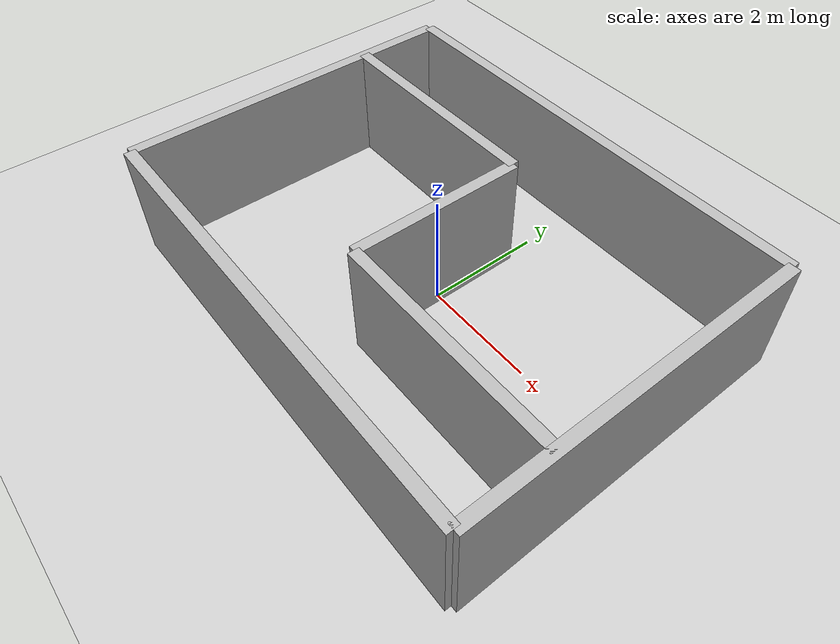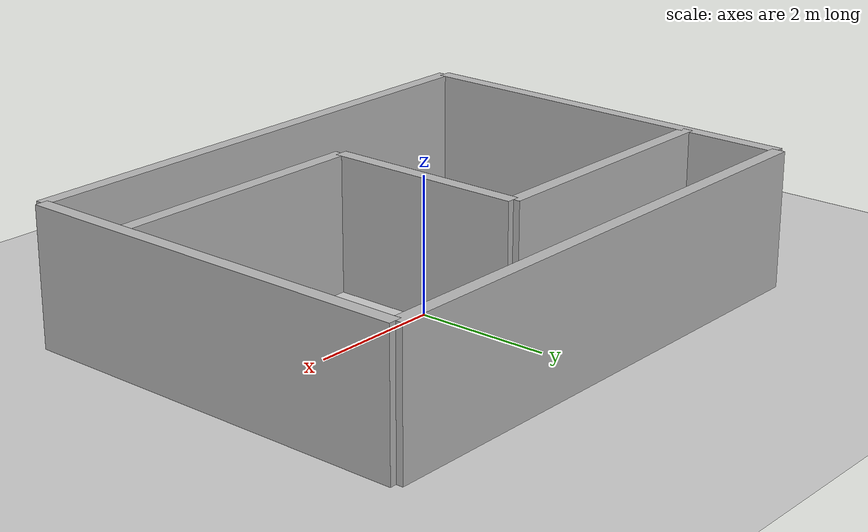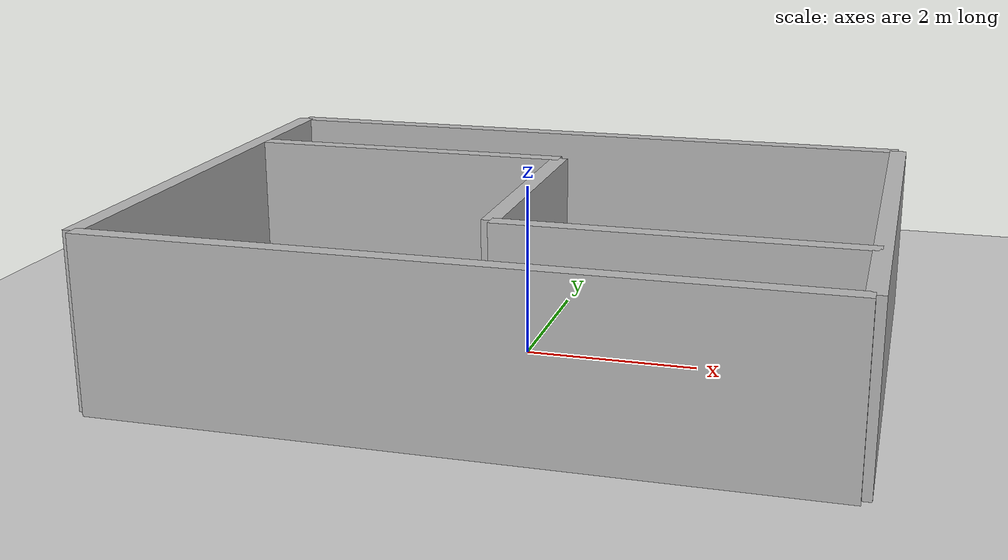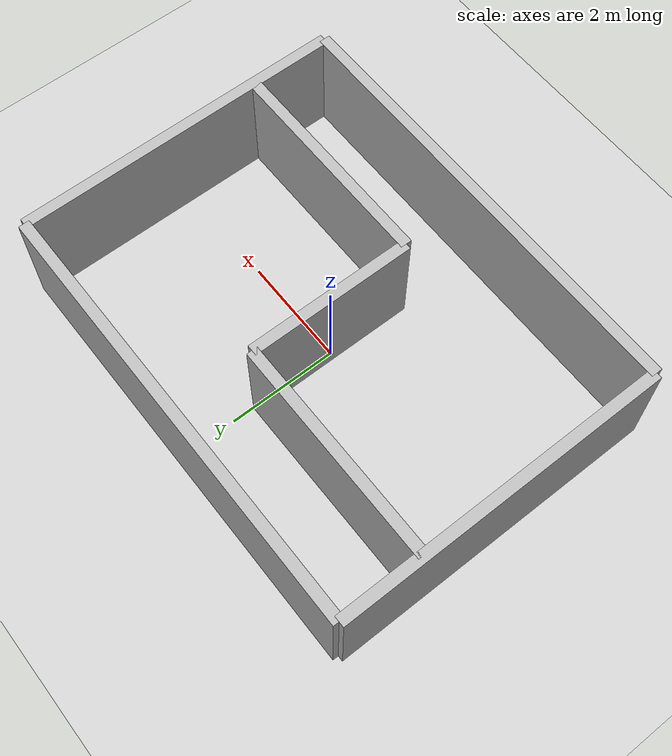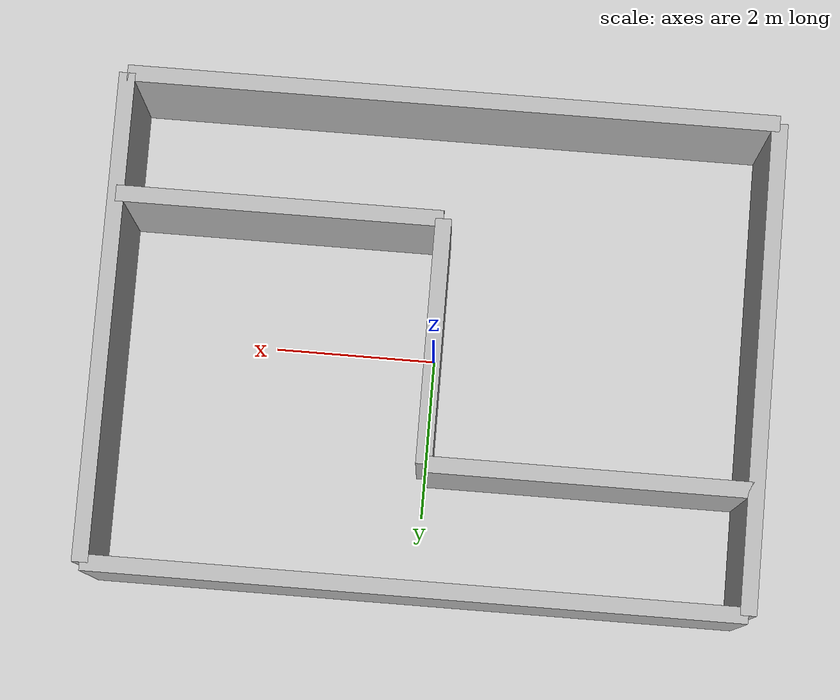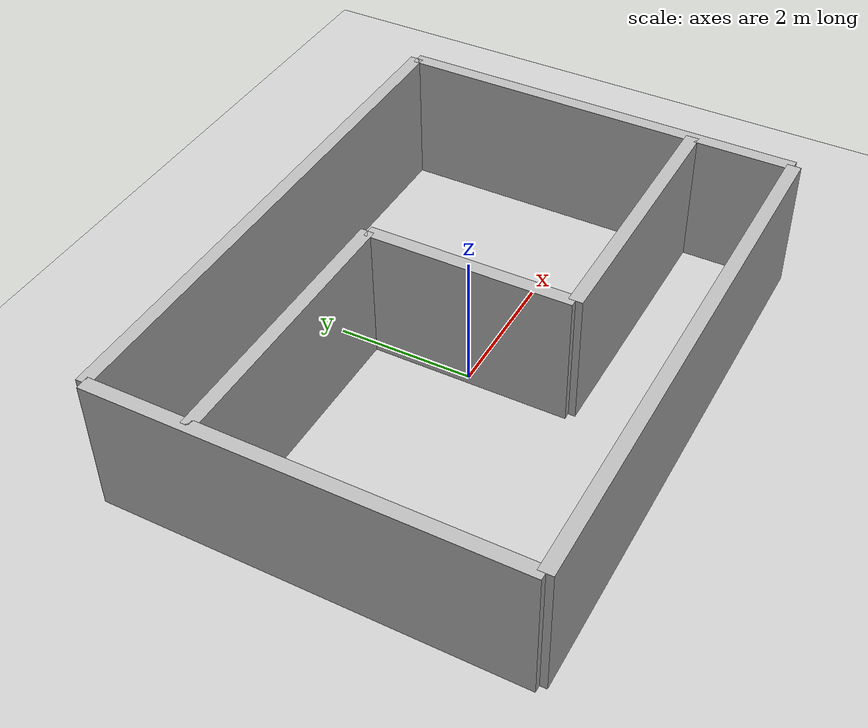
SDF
<?xml version="1.0" ?>
<sdf version="1.6">
  <world name="maze_world">
    <include><uri>model://ground_plane</uri></include>
    <include><uri>model://sun</uri></include>

    <!-- جدران المتاهة: صناديق طويلة رفيعة -->
    <!-- ممر أفقي علوي -->
    <model name="w1"><pose>0 3 1 0 0 0</pose><link name="l">
      <collision name="c"><geometry><box><size>8 0.2 2</size></box></geometry></collision>
      <visual name="v"><geometry><box><size>8 0.2 2</size></box></geometry></visual>
    </link><static>true</static></model>

    <!-- ممر أفقي سفلي -->
    <model name="w2"><pose>0 -3 1 0 0 0</pose><link name="l">
      <collision name="c"><geometry><box><size>8 0.2 2</size></box></geometry></collision>
      <visual name="v"><geometry><box><size>8 0.2 2</size></box></geometry></visual>
    </link><static>true</static></model>

    <!-- جدار يسار -->
    <model name="w3"><pose>-4 0 1 0 0 0</pose><link name="l">
      <collision name="c"><geometry><box><size>0.2 6 2</size></box></geometry></collision>
      <visual name="v"><geometry><box><size>0.2 6 2</size></box></geometry></visual>
    </link><static>true</static></model>

    <!-- جدار يمين -->
    <model name="w4"><pose>4 0 1 0 0 0</pose><link name="l">
      <collision name="c"><geometry><box><size>0.2 6 2</size></box></geometry></collision>
      <visual name="v"><geometry><box><size>0.2 6 2</size></box></geometry></visual>
    </link><static>true</static></model>

    <!-- حواجز داخلية تصنع متاهة بسيطة -->
    <model name="w5"><pose>-2 1.5 1 0 0 0</pose><link name="l">
      <collision name="c"><geometry><box><size>4 0.2 2</size></box></geometry></collision>
      <visual name="v"><geometry><box><size>4 0.2 2</size></box></geometry></visual>
    </link><static>true</static></model>

    <model name="w6"><pose> 2 -1.5 1 0 0 0</pose><link name="l">
      <collision name="c"><geometry><box><size>4 0.2 2</size></box></geometry></collision>
      <visual name="v"><geometry><box><size>4 0.2 2</size></box></geometry></visual>
    </link><static>true</static></model>

    <model name="w7"><pose>0 0 1 0 0 0</pose><link name="l">
      <collision name="c"><geometry><box><size>0.2 3.0 2</size></box></geometry></collision>
      <visual name="v"><geometry><box><size>0.2 3.0 2</size></box></geometry></visual>
    </link><static>true</static></model>
  </world>
</sdf>
